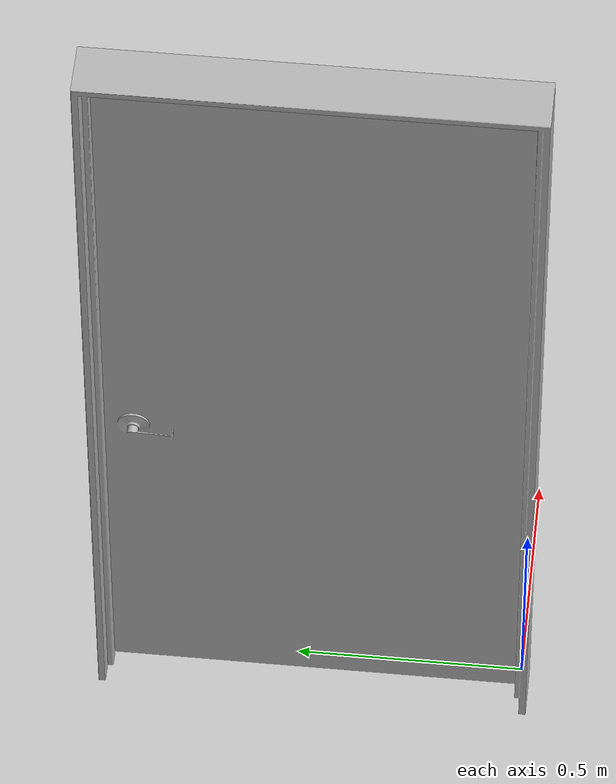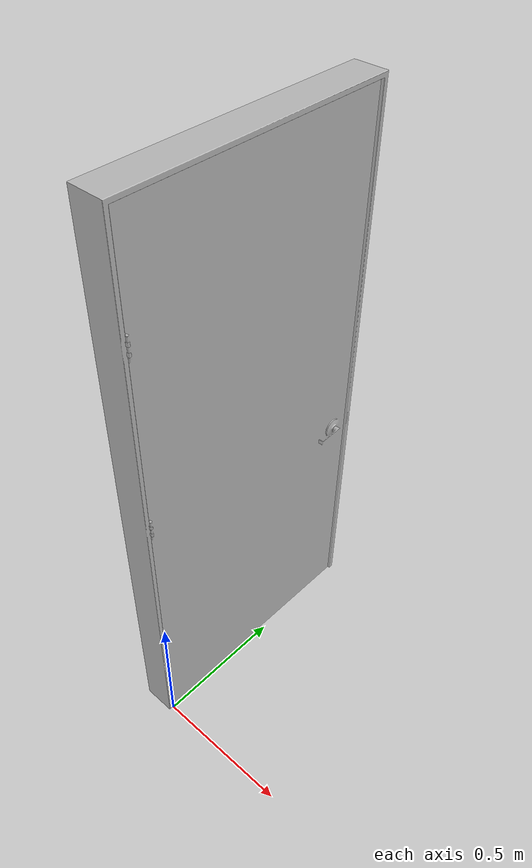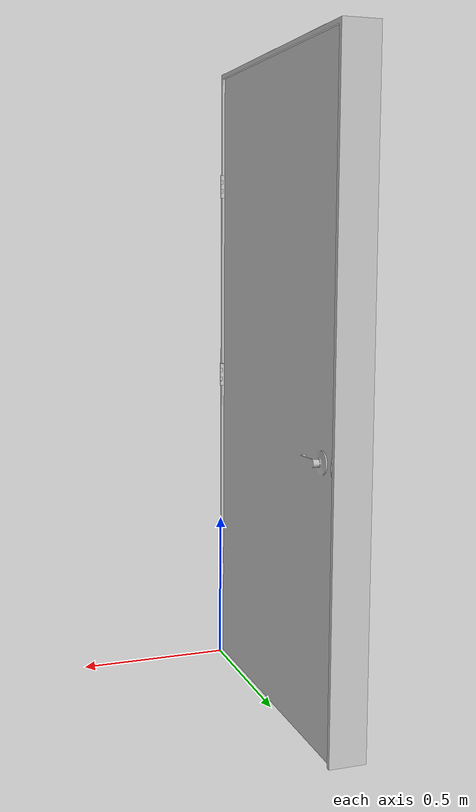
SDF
<sdf version="1.6">
	<model name="DoorHingedSingleSwingRight_O888a160c5277_lod0">
		<link name="frame_link">
			<pose>-0.05773276090621948 0.45874738693237305 -0.0 0 0 0</pose>
			<visual name="visual_Door_right_frame_zero_panel_wood_light">
				<geometry>
					<mesh>
						<uri>model://DoorHingedSingleSwingRight_O888a160c5277_lod0/meshes/visual_Door_right_frame_zero_panel_wood_light.dae</uri>
					</mesh>
				</geometry>
				<pose>0 0 0 0 0 0</pose>
			</visual>
			<collision name="collision_Door_right_frame_zero_panel_wood_light_lod0_0">
				<geometry>
					<mesh>
						<uri>model://DoorHingedSingleSwingRight_O888a160c5277_lod0/meshes/collision_Door_right_frame_zero_panel_wood_light_lod0_0.dae</uri>
					</mesh>
				</geometry>
				<pose>0 0 0 0 0 0</pose>
				<surface>
					<contact>
						<collide_bitmask>1</collide_bitmask>
					</contact>
				</surface>
			</collision>
		</link>
		<link name="door_link">
			<pose>0 0 0 0 0 0</pose>
			<inertial>
				<mass>1.0</mass>
				<inertia>
					<ixx>0.41441923703</ixx>
					<ixy>0.0</ixy>
					<ixz>0.0</ixz>
					<iyy>0.073070729875</iyy>
					<iyz>0.0</iyz>
					<izz>0.34294104678</izz>
				</inertia>
			</inertial>
			<visual name="visual_Door_right_door_zero_panel_wood_light">
				<geometry>
					<mesh>
						<uri>model://DoorHingedSingleSwingRight_O888a160c5277_lod0/meshes/visual_Door_right_door_zero_panel_wood_light.dae</uri>
					</mesh>
				</geometry>
				<pose>-0.05773276090621948 0.45874738693237305 -0.0 0 0 0</pose>
			</visual>
			<collision name="collision_Door_right_door_zero_panel_wood_light_lod0_0">
				<geometry>
					<mesh>
						<uri>model://DoorHingedSingleSwingRight_O888a160c5277_lod0/meshes/collision_Door_right_door_zero_panel_wood_light_lod0_0.dae</uri>
					</mesh>
				</geometry>
				<pose>-0.05773276090621948 0.45874738693237305 -0.0 0 0 0</pose>
				<surface>
					<contact>
						<collide_bitmask>1</collide_bitmask>
					</contact>
				</surface>
			</collision>
		</link>
		<joint name="world_joint" type="fixed">
			<child>frame_link</child>
			<parent>world</parent>
			<axis>
				<limit>
					<lower>0</lower>
					<upper>0</upper>
				</limit>
				<xyz>0 1 0</xyz>
				<dynamics>
					<damping>1</damping>
					<spring_reference>0</spring_reference>
					<spring_stiffness>0</spring_stiffness>
				</dynamics>
			</axis>
			<physics>
				<ode>
					<cfm_damping>1</cfm_damping>
					<limit/>
					<cfm>0</cfm>
					<erp>0.2</erp>
				</ode>
			</physics>
		</joint>
		<joint name="hinge_joint" type="revolute">
			<parent>frame_link</parent>
			<child>door_link</child>
			<pose>0 0 0 0 0 0</pose>
			<axis>
				<xyz>0 0 -1</xyz>
				<limit>
					<lower>0</lower>
					<upper>1.5707963267948966</upper>
				</limit>
				<dynamics>
					<damping>1</damping>
					<friction>1</friction>
					<spring_reference>0</spring_reference>
					<spring_stiffness>0</spring_stiffness>
				</dynamics>
				<use_parent_model_frame>0</use_parent_model_frame>
			</axis>
			<physics>
				<ode>
					<cfm_damping>1</cfm_damping>
					<limit>
						<cfm>0</cfm>
						<erp>0.2</erp>
					</limit>
				</ode>
			</physics>
		</joint>
	</model>
</sdf>
